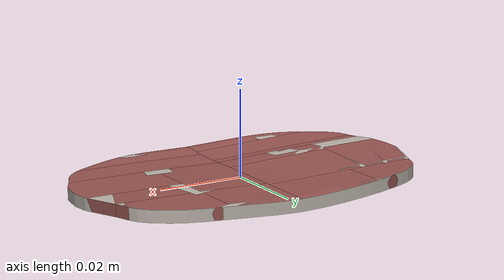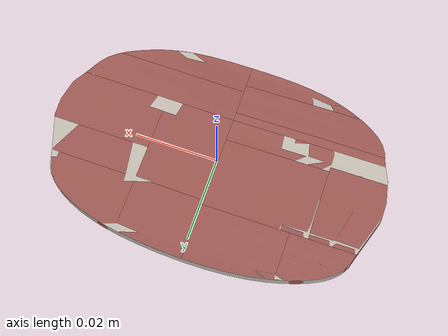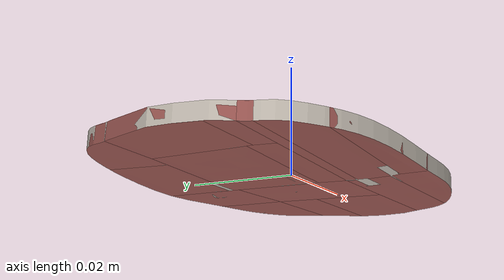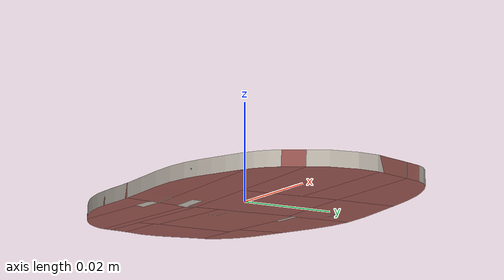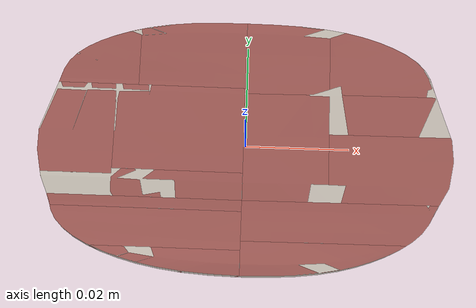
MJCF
<?xml version='1.0' encoding='utf-8'?>
<mujoco model="model">
  <compiler angle="radian" />
  <asset>
    <mesh file="visual/TurkeySlice001.obj" name="TurkeySlice001_vis" />
    <texture file="visual/T_BC001.png" name="TurkeySlice001_material" type="2d" />
    <material name="TurkeySlice001_material" rgba="1 1 1 1.0" texture="TurkeySlice001_material" shininess="0.08" specular="0.12" />
    <mesh file="collision/collision_mesh_collision_0.obj" name="TurkeySlice001_collision_mesh_0" />
    <mesh file="collision/collision_mesh_collision_1.obj" name="TurkeySlice001_collision_mesh_1" />
    <mesh file="collision/collision_mesh_collision_2.obj" name="TurkeySlice001_collision_mesh_2" />
    <mesh file="collision/collision_mesh_collision_3.obj" name="TurkeySlice001_collision_mesh_3" />
    <mesh file="collision/collision_mesh_collision_4.obj" name="TurkeySlice001_collision_mesh_4" />
    <mesh file="collision/collision_mesh_collision_5.obj" name="TurkeySlice001_collision_mesh_5" />
    <mesh file="collision/collision_mesh_collision_6.obj" name="TurkeySlice001_collision_mesh_6" />
    <mesh file="collision/collision_mesh_collision_7.obj" name="TurkeySlice001_collision_mesh_7" />
    <mesh file="collision/collision_mesh_collision_8.obj" name="TurkeySlice001_collision_mesh_8" />
    <mesh file="collision/collision_mesh_collision_9.obj" name="TurkeySlice001_collision_mesh_9" />
    <mesh file="collision/collision_mesh_collision_10.obj" name="TurkeySlice001_collision_mesh_10" />
    <mesh file="collision/collision_mesh_collision_11.obj" name="TurkeySlice001_collision_mesh_11" />
    <mesh file="collision/collision_mesh_collision_12.obj" name="TurkeySlice001_collision_mesh_12" />
    <mesh file="collision/collision_mesh_collision_13.obj" name="TurkeySlice001_collision_mesh_13" />
    <mesh file="collision/collision_mesh_collision_14.obj" name="TurkeySlice001_collision_mesh_14" />
    <mesh file="collision/collision_mesh_collision_15.obj" name="TurkeySlice001_collision_mesh_15" />
    </asset>
  <default>
    <default class="visual">
      <geom conaffinity="0" contype="0" group="1" type="mesh" />
      </default>
    <default class="collision">
      <geom group="0" rgba="0.5 0 0 0.5" />
      </default>
    <default class="spawn">
      <geom group="0" rgba="1 1 1 0.5" contype="0" conaffinity="0" />
      <site group="0" rgba="1 1 1 0.5" />
      </default>
    <default class="region">
      <geom group="1" conaffinity="0" contype="0" rgba="0 1 0 0" mass="0" />
      </default>
    </default>
  <worldbody>
    <body>
      <body name="object">
        <geom mesh="TurkeySlice001_vis" type="mesh" solimp="0.998 0.998 0.001" solref="0.001 1" density="100" friction="0.95 0.3 0.1" class="visual" material="TurkeySlice001_material" />
        <geom class="region" name="reg_bbox" type="box" pos="-9.657500000000152e-05 2.219999999998959e-06 -8.074999999999749e-06" size="0.041050575 0.025583250000000002 0.004215305" />
        <geom mesh="TurkeySlice001_collision_mesh_0" type="mesh" class="collision" />
        <geom mesh="TurkeySlice001_collision_mesh_1" type="mesh" class="collision" />
        <geom mesh="TurkeySlice001_collision_mesh_2" type="mesh" class="collision" />
        <geom mesh="TurkeySlice001_collision_mesh_3" type="mesh" class="collision" />
        <geom mesh="TurkeySlice001_collision_mesh_4" type="mesh" class="collision" />
        <geom mesh="TurkeySlice001_collision_mesh_5" type="mesh" class="collision" />
        <geom mesh="TurkeySlice001_collision_mesh_6" type="mesh" class="collision" />
        <geom mesh="TurkeySlice001_collision_mesh_7" type="mesh" class="collision" />
        <geom mesh="TurkeySlice001_collision_mesh_8" type="mesh" class="collision" />
        <geom mesh="TurkeySlice001_collision_mesh_9" type="mesh" class="collision" />
        <geom mesh="TurkeySlice001_collision_mesh_10" type="mesh" class="collision" />
        <geom mesh="TurkeySlice001_collision_mesh_11" type="mesh" class="collision" />
        <geom mesh="TurkeySlice001_collision_mesh_12" type="mesh" class="collision" />
        <geom mesh="TurkeySlice001_collision_mesh_13" type="mesh" class="collision" />
        <geom mesh="TurkeySlice001_collision_mesh_14" type="mesh" class="collision" />
        <geom mesh="TurkeySlice001_collision_mesh_15" type="mesh" class="collision" />
        </body>
      </body>
    </worldbody>
  <custom><text name="material_gt" data="processed_meat" /></custom>
  <actuator />
  </mujoco>
